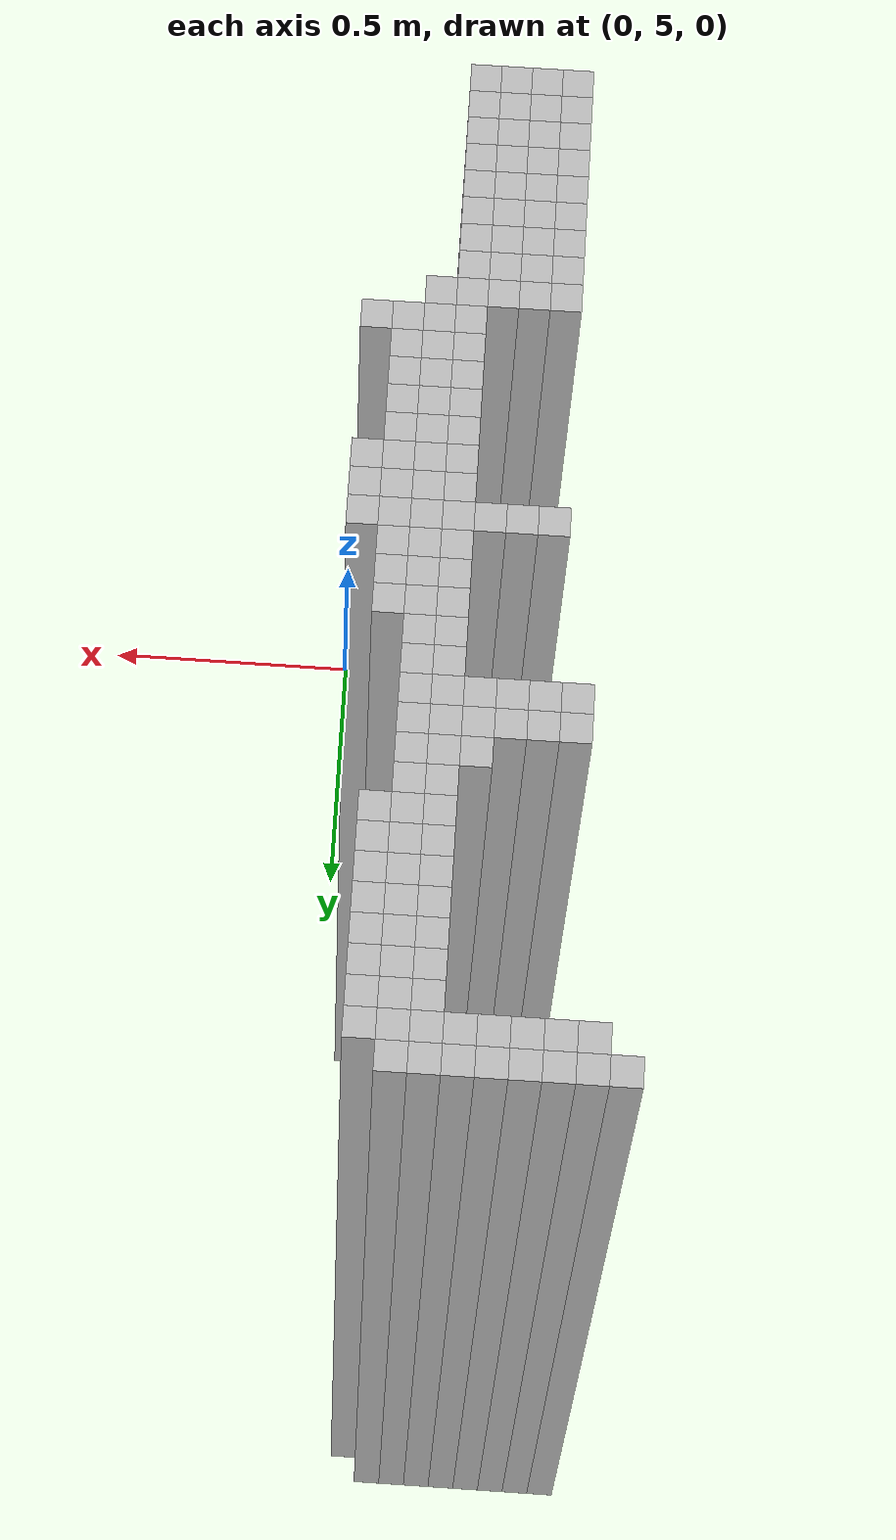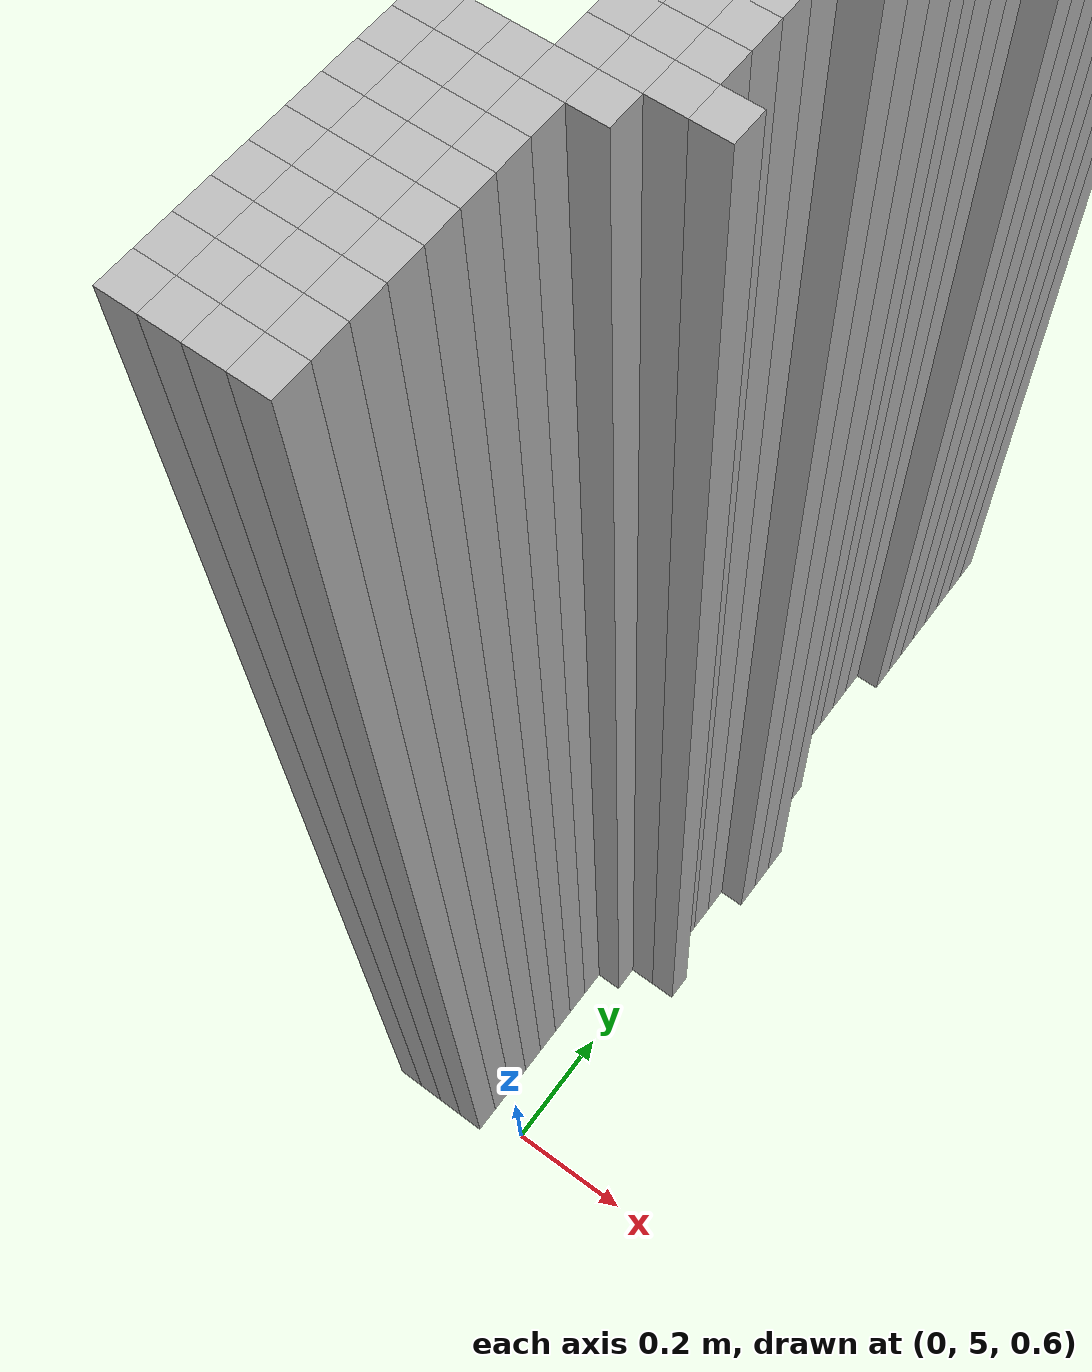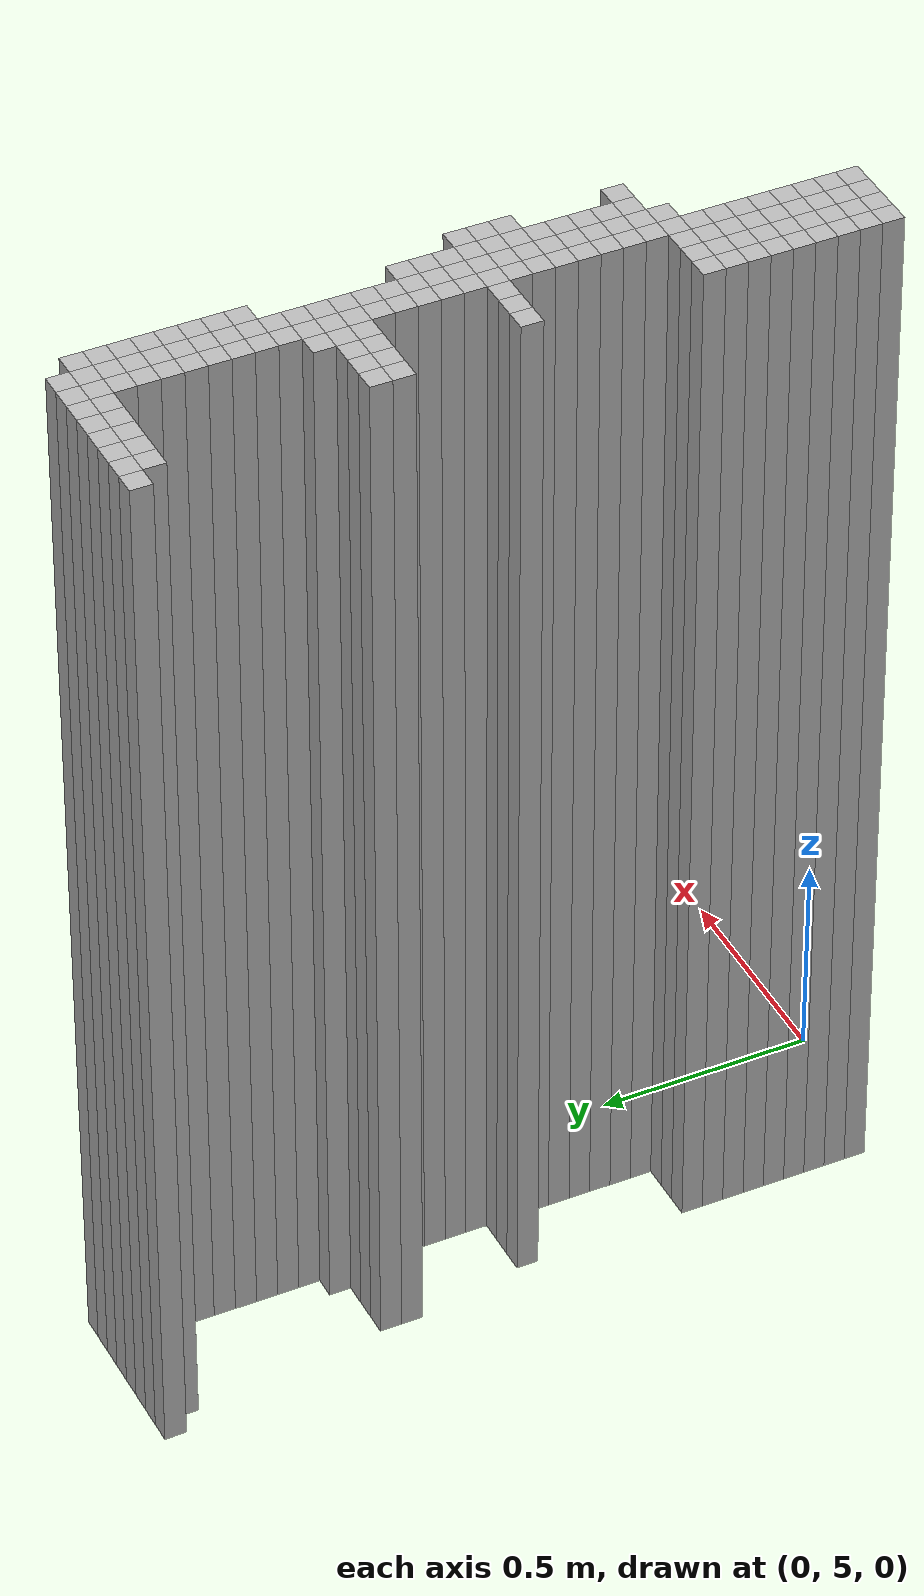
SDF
<sdf version="1.9">
 <world name="map_world">
  <model name="wall_213_18">
   <static>true</static>
   <pose>-0.511 6.780 1.250 0 0 0</pose>
   <link name="link">
    <collision name="collision"><geometry><box><size>0.050 0.050 2.500</size></box></geometry></collision>
    <visual name="visual"><geometry><box><size>0.050 0.050 2.500</size></box></geometry></visual>
   </link>
  </model>
  <model name="wall_214_18">
   <static>true</static>
   <pose>-0.461 6.780 1.250 0 0 0</pose>
   <link name="link">
    <collision name="collision"><geometry><box><size>0.050 0.050 2.500</size></box></geometry></collision>
    <visual name="visual"><geometry><box><size>0.050 0.050 2.500</size></box></geometry></visual>
   </link>
  </model>
  <model name="wall_215_18">
   <static>true</static>
   <pose>-0.411 6.780 1.250 0 0 0</pose>
   <link name="link">
    <collision name="collision"><geometry><box><size>0.050 0.050 2.500</size></box></geometry></collision>
    <visual name="visual"><geometry><box><size>0.050 0.050 2.500</size></box></geometry></visual>
   </link>
  </model>
  <model name="wall_216_18">
   <static>true</static>
   <pose>-0.361 6.780 1.250 0 0 0</pose>
   <link name="link">
    <collision name="collision"><geometry><box><size>0.050 0.050 2.500</size></box></geometry></collision>
    <visual name="visual"><geometry><box><size>0.050 0.050 2.500</size></box></geometry></visual>
   </link>
  </model>
  <model name="wall_217_18">
   <static>true</static>
   <pose>-0.311 6.780 1.250 0 0 0</pose>
   <link name="link">
    <collision name="collision"><geometry><box><size>0.050 0.050 2.500</size></box></geometry></collision>
    <visual name="visual"><geometry><box><size>0.050 0.050 2.500</size></box></geometry></visual>
   </link>
  </model>
  <model name="wall_218_18">
   <static>true</static>
   <pose>-0.261 6.780 1.250 0 0 0</pose>
   <link name="link">
    <collision name="collision"><geometry><box><size>0.050 0.050 2.500</size></box></geometry></collision>
    <visual name="visual"><geometry><box><size>0.050 0.050 2.500</size></box></geometry></visual>
   </link>
  </model>
  <model name="wall_219_18">
   <static>true</static>
   <pose>-0.211 6.780 1.250 0 0 0</pose>
   <link name="link">
    <collision name="collision"><geometry><box><size>0.050 0.050 2.500</size></box></geometry></collision>
    <visual name="visual"><geometry><box><size>0.050 0.050 2.500</size></box></geometry></visual>
   </link>
  </model>
  <model name="wall_220_18">
   <static>true</static>
   <pose>-0.161 6.780 1.250 0 0 0</pose>
   <link name="link">
    <collision name="collision"><geometry><box><size>0.050 0.050 2.500</size></box></geometry></collision>
    <visual name="visual"><geometry><box><size>0.050 0.050 2.500</size></box></geometry></visual>
   </link>
  </model>
  <model name="wall_214_19">
   <static>true</static>
   <pose>-0.461 6.730 1.250 0 0 0</pose>
   <link name="link">
    <collision name="collision"><geometry><box><size>0.050 0.050 2.500</size></box></geometry></collision>
    <visual name="visual"><geometry><box><size>0.050 0.050 2.500</size></box></geometry></visual>
   </link>
  </model>
  <model name="wall_215_19">
   <static>true</static>
   <pose>-0.411 6.730 1.250 0 0 0</pose>
   <link name="link">
    <collision name="collision"><geometry><box><size>0.050 0.050 2.500</size></box></geometry></collision>
    <visual name="visual"><geometry><box><size>0.050 0.050 2.500</size></box></geometry></visual>
   </link>
  </model>
  <model name="wall_216_19">
   <static>true</static>
   <pose>-0.361 6.730 1.250 0 0 0</pose>
   <link name="link">
    <collision name="collision"><geometry><box><size>0.050 0.050 2.500</size></box></geometry></collision>
    <visual name="visual"><geometry><box><size>0.050 0.050 2.500</size></box></geometry></visual>
   </link>
  </model>
  <model name="wall_217_19">
   <static>true</static>
   <pose>-0.311 6.730 1.250 0 0 0</pose>
   <link name="link">
    <collision name="collision"><geometry><box><size>0.050 0.050 2.500</size></box></geometry></collision>
    <visual name="visual"><geometry><box><size>0.050 0.050 2.500</size></box></geometry></visual>
   </link>
  </model>
  <model name="wall_218_19">
   <static>true</static>
   <pose>-0.261 6.730 1.250 0 0 0</pose>
   <link name="link">
    <collision name="collision"><geometry><box><size>0.050 0.050 2.500</size></box></geometry></collision>
    <visual name="visual"><geometry><box><size>0.050 0.050 2.500</size></box></geometry></visual>
   </link>
  </model>
  <model name="wall_219_19">
   <static>true</static>
   <pose>-0.211 6.730 1.250 0 0 0</pose>
   <link name="link">
    <collision name="collision"><geometry><box><size>0.050 0.050 2.500</size></box></geometry></collision>
    <visual name="visual"><geometry><box><size>0.050 0.050 2.500</size></box></geometry></visual>
   </link>
  </model>
  <model name="wall_220_19">
   <static>true</static>
   <pose>-0.161 6.730 1.250 0 0 0</pose>
   <link name="link">
    <collision name="collision"><geometry><box><size>0.050 0.050 2.500</size></box></geometry></collision>
    <visual name="visual"><geometry><box><size>0.050 0.050 2.500</size></box></geometry></visual>
   </link>
  </model>
  <model name="wall_221_19">
   <static>true</static>
   <pose>-0.111 6.730 1.250 0 0 0</pose>
   <link name="link">
    <collision name="collision"><geometry><box><size>0.050 0.050 2.500</size></box></geometry></collision>
    <visual name="visual"><geometry><box><size>0.050 0.050 2.500</size></box></geometry></visual>
   </link>
  </model>
  <model name="wall_219_20">
   <static>true</static>
   <pose>-0.211 6.680 1.250 0 0 0</pose>
   <link name="link">
    <collision name="collision"><geometry><box><size>0.050 0.050 2.500</size></box></geometry></collision>
    <visual name="visual"><geometry><box><size>0.050 0.050 2.500</size></box></geometry></visual>
   </link>
  </model>
  <model name="wall_220_20">
   <static>true</static>
   <pose>-0.161 6.680 1.250 0 0 0</pose>
   <link name="link">
    <collision name="collision"><geometry><box><size>0.050 0.050 2.500</size></box></geometry></collision>
    <visual name="visual"><geometry><box><size>0.050 0.050 2.500</size></box></geometry></visual>
   </link>
  </model>
  <model name="wall_221_20">
   <static>true</static>
   <pose>-0.111 6.680 1.250 0 0 0</pose>
   <link name="link">
    <collision name="collision"><geometry><box><size>0.050 0.050 2.500</size></box></geometry></collision>
    <visual name="visual"><geometry><box><size>0.050 0.050 2.500</size></box></geometry></visual>
   </link>
  </model>
  <model name="wall_219_21">
   <static>true</static>
   <pose>-0.211 6.630 1.250 0 0 0</pose>
   <link name="link">
    <collision name="collision"><geometry><box><size>0.050 0.050 2.500</size></box></geometry></collision>
    <visual name="visual"><geometry><box><size>0.050 0.050 2.500</size></box></geometry></visual>
   </link>
  </model>
  <model name="wall_220_21">
   <static>true</static>
   <pose>-0.161 6.630 1.250 0 0 0</pose>
   <link name="link">
    <collision name="collision"><geometry><box><size>0.050 0.050 2.500</size></box></geometry></collision>
    <visual name="visual"><geometry><box><size>0.050 0.050 2.500</size></box></geometry></visual>
   </link>
  </model>
  <model name="wall_221_21">
   <static>true</static>
   <pose>-0.111 6.630 1.250 0 0 0</pose>
   <link name="link">
    <collision name="collision"><geometry><box><size>0.050 0.050 2.500</size></box></geometry></collision>
    <visual name="visual"><geometry><box><size>0.050 0.050 2.500</size></box></geometry></visual>
   </link>
  </model>
  <model name="wall_219_22">
   <static>true</static>
   <pose>-0.211 6.580 1.250 0 0 0</pose>
   <link name="link">
    <collision name="collision"><geometry><box><size>0.050 0.050 2.500</size></box></geometry></collision>
    <visual name="visual"><geometry><box><size>0.050 0.050 2.500</size></box></geometry></visual>
   </link>
  </model>
  <model name="wall_220_22">
   <static>true</static>
   <pose>-0.161 6.580 1.250 0 0 0</pose>
   <link name="link">
    <collision name="collision"><geometry><box><size>0.050 0.050 2.500</size></box></geometry></collision>
    <visual name="visual"><geometry><box><size>0.050 0.050 2.500</size></box></geometry></visual>
   </link>
  </model>
  <model name="wall_221_22">
   <static>true</static>
   <pose>-0.111 6.580 1.250 0 0 0</pose>
   <link name="link">
    <collision name="collision"><geometry><box><size>0.050 0.050 2.500</size></box></geometry></collision>
    <visual name="visual"><geometry><box><size>0.050 0.050 2.500</size></box></geometry></visual>
   </link>
  </model>
  <model name="wall_219_23">
   <static>true</static>
   <pose>-0.211 6.530 1.250 0 0 0</pose>
   <link name="link">
    <collision name="collision"><geometry><box><size>0.050 0.050 2.500</size></box></geometry></collision>
    <visual name="visual"><geometry><box><size>0.050 0.050 2.500</size></box></geometry></visual>
   </link>
  </model>
  <model name="wall_220_23">
   <static>true</static>
   <pose>-0.161 6.530 1.250 0 0 0</pose>
   <link name="link">
    <collision name="collision"><geometry><box><size>0.050 0.050 2.500</size></box></geometry></collision>
    <visual name="visual"><geometry><box><size>0.050 0.050 2.500</size></box></geometry></visual>
   </link>
  </model>
  <model name="wall_221_23">
   <static>true</static>
   <pose>-0.111 6.530 1.250 0 0 0</pose>
   <link name="link">
    <collision name="collision"><geometry><box><size>0.050 0.050 2.500</size></box></geometry></collision>
    <visual name="visual"><geometry><box><size>0.050 0.050 2.500</size></box></geometry></visual>
   </link>
  </model>
  <model name="wall_219_24">
   <static>true</static>
   <pose>-0.211 6.480 1.250 0 0 0</pose>
   <link name="link">
    <collision name="collision"><geometry><box><size>0.050 0.050 2.500</size></box></geometry></collision>
    <visual name="visual"><geometry><box><size>0.050 0.050 2.500</size></box></geometry></visual>
   </link>
  </model>
  <model name="wall_220_24">
   <static>true</static>
   <pose>-0.161 6.480 1.250 0 0 0</pose>
   <link name="link">
    <collision name="collision"><geometry><box><size>0.050 0.050 2.500</size></box></geometry></collision>
    <visual name="visual"><geometry><box><size>0.050 0.050 2.500</size></box></geometry></visual>
   </link>
  </model>
  <model name="wall_221_24">
   <static>true</static>
   <pose>-0.111 6.480 1.250 0 0 0</pose>
   <link name="link">
    <collision name="collision"><geometry><box><size>0.050 0.050 2.500</size></box></geometry></collision>
    <visual name="visual"><geometry><box><size>0.050 0.050 2.500</size></box></geometry></visual>
   </link>
  </model>
  <model name="wall_219_25">
   <static>true</static>
   <pose>-0.211 6.430 1.250 0 0 0</pose>
   <link name="link">
    <collision name="collision"><geometry><box><size>0.050 0.050 2.500</size></box></geometry></collision>
    <visual name="visual"><geometry><box><size>0.050 0.050 2.500</size></box></geometry></visual>
   </link>
  </model>
  <model name="wall_220_25">
   <static>true</static>
   <pose>-0.161 6.430 1.250 0 0 0</pose>
   <link name="link">
    <collision name="collision"><geometry><box><size>0.050 0.050 2.500</size></box></geometry></collision>
    <visual name="visual"><geometry><box><size>0.050 0.050 2.500</size></box></geometry></visual>
   </link>
  </model>
  <model name="wall_221_25">
   <static>true</static>
   <pose>-0.111 6.430 1.250 0 0 0</pose>
   <link name="link">
    <collision name="collision"><geometry><box><size>0.050 0.050 2.500</size></box></geometry></collision>
    <visual name="visual"><geometry><box><size>0.050 0.050 2.500</size></box></geometry></visual>
   </link>
  </model>
  <model name="wall_219_26">
   <static>true</static>
   <pose>-0.211 6.380 1.250 0 0 0</pose>
   <link name="link">
    <collision name="collision"><geometry><box><size>0.050 0.050 2.500</size></box></geometry></collision>
    <visual name="visual"><geometry><box><size>0.050 0.050 2.500</size></box></geometry></visual>
   </link>
  </model>
  <model name="wall_220_26">
   <static>true</static>
   <pose>-0.161 6.380 1.250 0 0 0</pose>
   <link name="link">
    <collision name="collision"><geometry><box><size>0.050 0.050 2.500</size></box></geometry></collision>
    <visual name="visual"><geometry><box><size>0.050 0.050 2.500</size></box></geometry></visual>
   </link>
  </model>
  <model name="wall_221_26">
   <static>true</static>
   <pose>-0.111 6.380 1.250 0 0 0</pose>
   <link name="link">
    <collision name="collision"><geometry><box><size>0.050 0.050 2.500</size></box></geometry></collision>
    <visual name="visual"><geometry><box><size>0.050 0.050 2.500</size></box></geometry></visual>
   </link>
  </model>
  <model name="wall_219_27">
   <static>true</static>
   <pose>-0.211 6.330 1.250 0 0 0</pose>
   <link name="link">
    <collision name="collision"><geometry><box><size>0.050 0.050 2.500</size></box></geometry></collision>
    <visual name="visual"><geometry><box><size>0.050 0.050 2.500</size></box></geometry></visual>
   </link>
  </model>
  <model name="wall_220_27">
   <static>true</static>
   <pose>-0.161 6.330 1.250 0 0 0</pose>
   <link name="link">
    <collision name="collision"><geometry><box><size>0.050 0.050 2.500</size></box></geometry></collision>
    <visual name="visual"><geometry><box><size>0.050 0.050 2.500</size></box></geometry></visual>
   </link>
  </model>
  <model name="wall_218_28">
   <static>true</static>
   <pose>-0.261 6.280 1.250 0 0 0</pose>
   <link name="link">
    <collision name="collision"><geometry><box><size>0.050 0.050 2.500</size></box></geometry></collision>
    <visual name="visual"><geometry><box><size>0.050 0.050 2.500</size></box></geometry></visual>
   </link>
  </model>
  <model name="wall_219_28">
   <static>true</static>
   <pose>-0.211 6.280 1.250 0 0 0</pose>
   <link name="link">
    <collision name="collision"><geometry><box><size>0.050 0.050 2.500</size></box></geometry></collision>
    <visual name="visual"><geometry><box><size>0.050 0.050 2.500</size></box></geometry></visual>
   </link>
  </model>
  <model name="wall_220_28">
   <static>true</static>
   <pose>-0.161 6.280 1.250 0 0 0</pose>
   <link name="link">
    <collision name="collision"><geometry><box><size>0.050 0.050 2.500</size></box></geometry></collision>
    <visual name="visual"><geometry><box><size>0.050 0.050 2.500</size></box></geometry></visual>
   </link>
  </model>
  <model name="wall_215_29">
   <static>true</static>
   <pose>-0.411 6.230 1.250 0 0 0</pose>
   <link name="link">
    <collision name="collision"><geometry><box><size>0.050 0.050 2.500</size></box></geometry></collision>
    <visual name="visual"><geometry><box><size>0.050 0.050 2.500</size></box></geometry></visual>
   </link>
  </model>
  <model name="wall_216_29">
   <static>true</static>
   <pose>-0.361 6.230 1.250 0 0 0</pose>
   <link name="link">
    <collision name="collision"><geometry><box><size>0.050 0.050 2.500</size></box></geometry></collision>
    <visual name="visual"><geometry><box><size>0.050 0.050 2.500</size></box></geometry></visual>
   </link>
  </model>
  <model name="wall_217_29">
   <static>true</static>
   <pose>-0.311 6.230 1.250 0 0 0</pose>
   <link name="link">
    <collision name="collision"><geometry><box><size>0.050 0.050 2.500</size></box></geometry></collision>
    <visual name="visual"><geometry><box><size>0.050 0.050 2.500</size></box></geometry></visual>
   </link>
  </model>
  <model name="wall_218_29">
   <static>true</static>
   <pose>-0.261 6.230 1.250 0 0 0</pose>
   <link name="link">
    <collision name="collision"><geometry><box><size>0.050 0.050 2.500</size></box></geometry></collision>
    <visual name="visual"><geometry><box><size>0.050 0.050 2.500</size></box></geometry></visual>
   </link>
  </model>
  <model name="wall_219_29">
   <static>true</static>
   <pose>-0.211 6.230 1.250 0 0 0</pose>
   <link name="link">
    <collision name="collision"><geometry><box><size>0.050 0.050 2.500</size></box></geometry></collision>
    <visual name="visual"><geometry><box><size>0.050 0.050 2.500</size></box></geometry></visual>
   </link>
  </model>
  <model name="wall_220_29">
   <static>true</static>
   <pose>-0.161 6.230 1.250 0 0 0</pose>
   <link name="link">
    <collision name="collision"><geometry><box><size>0.050 0.050 2.500</size></box></geometry></collision>
    <visual name="visual"><geometry><box><size>0.050 0.050 2.500</size></box></geometry></visual>
   </link>
  </model>
  <model name="wall_215_30">
   <static>true</static>
   <pose>-0.411 6.180 1.250 0 0 0</pose>
   <link name="link">
    <collision name="collision"><geometry><box><size>0.050 0.050 2.500</size></box></geometry></collision>
    <visual name="visual"><geometry><box><size>0.050 0.050 2.500</size></box></geometry></visual>
   </link>
  </model>
  <model name="wall_216_30">
   <static>true</static>
   <pose>-0.361 6.180 1.250 0 0 0</pose>
   <link name="link">
    <collision name="collision"><geometry><box><size>0.050 0.050 2.500</size></box></geometry></collision>
    <visual name="visual"><geometry><box><size>0.050 0.050 2.500</size></box></geometry></visual>
   </link>
  </model>
  <model name="wall_217_30">
   <static>true</static>
   <pose>-0.311 6.180 1.250 0 0 0</pose>
   <link name="link">
    <collision name="collision"><geometry><box><size>0.050 0.050 2.500</size></box></geometry></collision>
    <visual name="visual"><geometry><box><size>0.050 0.050 2.500</size></box></geometry></visual>
   </link>
  </model>
  <model name="wall_218_30">
   <static>true</static>
   <pose>-0.261 6.180 1.250 0 0 0</pose>
   <link name="link">
    <collision name="collision"><geometry><box><size>0.050 0.050 2.500</size></box></geometry></collision>
    <visual name="visual"><geometry><box><size>0.050 0.050 2.500</size></box></geometry></visual>
   </link>
  </model>
  <model name="wall_219_30">
   <static>true</static>
   <pose>-0.211 6.180 1.250 0 0 0</pose>
   <link name="link">
    <collision name="collision"><geometry><box><size>0.050 0.050 2.500</size></box></geometry></collision>
    <visual name="visual"><geometry><box><size>0.050 0.050 2.500</size></box></geometry></visual>
   </link>
  </model>
  <model name="wall_220_30">
   <static>true</static>
   <pose>-0.161 6.180 1.250 0 0 0</pose>
   <link name="link">
    <collision name="collision"><geometry><box><size>0.050 0.050 2.500</size></box></geometry></collision>
    <visual name="visual"><geometry><box><size>0.050 0.050 2.500</size></box></geometry></visual>
   </link>
  </model>
  <model name="wall_219_31">
   <static>true</static>
   <pose>-0.211 6.130 1.250 0 0 0</pose>
   <link name="link">
    <collision name="collision"><geometry><box><size>0.050 0.050 2.500</size></box></geometry></collision>
    <visual name="visual"><geometry><box><size>0.050 0.050 2.500</size></box></geometry></visual>
   </link>
  </model>
  <model name="wall_220_31">
   <static>true</static>
   <pose>-0.161 6.130 1.250 0 0 0</pose>
   <link name="link">
    <collision name="collision"><geometry><box><size>0.050 0.050 2.500</size></box></geometry></collision>
    <visual name="visual"><geometry><box><size>0.050 0.050 2.500</size></box></geometry></visual>
   </link>
  </model>
  <model name="wall_219_32">
   <static>true</static>
   <pose>-0.211 6.080 1.250 0 0 0</pose>
   <link name="link">
    <collision name="collision"><geometry><box><size>0.050 0.050 2.500</size></box></geometry></collision>
    <visual name="visual"><geometry><box><size>0.050 0.050 2.500</size></box></geometry></visual>
   </link>
  </model>
  <model name="wall_220_32">
   <static>true</static>
   <pose>-0.161 6.080 1.250 0 0 0</pose>
   <link name="link">
    <collision name="collision"><geometry><box><size>0.050 0.050 2.500</size></box></geometry></collision>
    <visual name="visual"><geometry><box><size>0.050 0.050 2.500</size></box></geometry></visual>
   </link>
  </model>
  <model name="wall_219_33">
   <static>true</static>
   <pose>-0.211 6.030 1.250 0 0 0</pose>
   <link name="link">
    <collision name="collision"><geometry><box><size>0.050 0.050 2.500</size></box></geometry></collision>
    <visual name="visual"><geometry><box><size>0.050 0.050 2.500</size></box></geometry></visual>
   </link>
  </model>
  <model name="wall_220_33">
   <static>true</static>
   <pose>-0.161 6.030 1.250 0 0 0</pose>
   <link name="link">
    <collision name="collision"><geometry><box><size>0.050 0.050 2.500</size></box></geometry></collision>
    <visual name="visual"><geometry><box><size>0.050 0.050 2.500</size></box></geometry></visual>
   </link>
  </model>
  <model name="wall_221_33">
   <static>true</static>
   <pose>-0.111 6.030 1.250 0 0 0</pose>
   <link name="link">
    <collision name="collision"><geometry><box><size>0.050 0.050 2.500</size></box></geometry></collision>
    <visual name="visual"><geometry><box><size>0.050 0.050 2.500</size></box></geometry></visual>
   </link>
  </model>
  <model name="wall_219_34">
   <static>true</static>
   <pose>-0.211 5.980 1.250 0 0 0</pose>
   <link name="link">
    <collision name="collision"><geometry><box><size>0.050 0.050 2.500</size></box></geometry></collision>
    <visual name="visual"><geometry><box><size>0.050 0.050 2.500</size></box></geometry></visual>
   </link>
  </model>
  <model name="wall_220_34">
   <static>true</static>
   <pose>-0.161 5.980 1.250 0 0 0</pose>
   <link name="link">
    <collision name="collision"><geometry><box><size>0.050 0.050 2.500</size></box></geometry></collision>
    <visual name="visual"><geometry><box><size>0.050 0.050 2.500</size></box></geometry></visual>
   </link>
  </model>
  <model name="wall_221_34">
   <static>true</static>
   <pose>-0.111 5.980 1.250 0 0 0</pose>
   <link name="link">
    <collision name="collision"><geometry><box><size>0.050 0.050 2.500</size></box></geometry></collision>
    <visual name="visual"><geometry><box><size>0.050 0.050 2.500</size></box></geometry></visual>
   </link>
  </model>
  <model name="wall_219_35">
   <static>true</static>
   <pose>-0.211 5.930 1.250 0 0 0</pose>
   <link name="link">
    <collision name="collision"><geometry><box><size>0.050 0.050 2.500</size></box></geometry></collision>
    <visual name="visual"><geometry><box><size>0.050 0.050 2.500</size></box></geometry></visual>
   </link>
  </model>
  <model name="wall_220_35">
   <static>true</static>
   <pose>-0.161 5.930 1.250 0 0 0</pose>
   <link name="link">
    <collision name="collision"><geometry><box><size>0.050 0.050 2.500</size></box></geometry></collision>
    <visual name="visual"><geometry><box><size>0.050 0.050 2.500</size></box></geometry></visual>
   </link>
  </model>
  <model name="wall_221_35">
   <static>true</static>
   <pose>-0.111 5.930 1.250 0 0 0</pose>
   <link name="link">
    <collision name="collision"><geometry><box><size>0.050 0.050 2.500</size></box></geometry></collision>
    <visual name="visual"><geometry><box><size>0.050 0.050 2.500</size></box></geometry></visual>
   </link>
  </model>
  <model name="wall_216_36">
   <static>true</static>
   <pose>-0.361 5.880 1.250 0 0 0</pose>
   <link name="link">
    <collision name="collision"><geometry><box><size>0.050 0.050 2.500</size></box></geometry></collision>
    <visual name="visual"><geometry><box><size>0.050 0.050 2.500</size></box></geometry></visual>
   </link>
  </model>
  <model name="wall_217_36">
   <static>true</static>
   <pose>-0.311 5.880 1.250 0 0 0</pose>
   <link name="link">
    <collision name="collision"><geometry><box><size>0.050 0.050 2.500</size></box></geometry></collision>
    <visual name="visual"><geometry><box><size>0.050 0.050 2.500</size></box></geometry></visual>
   </link>
  </model>
  <model name="wall_218_36">
   <static>true</static>
   <pose>-0.261 5.880 1.250 0 0 0</pose>
   <link name="link">
    <collision name="collision"><geometry><box><size>0.050 0.050 2.500</size></box></geometry></collision>
    <visual name="visual"><geometry><box><size>0.050 0.050 2.500</size></box></geometry></visual>
   </link>
  </model>
  <model name="wall_219_36">
   <static>true</static>
   <pose>-0.211 5.880 1.250 0 0 0</pose>
   <link name="link">
    <collision name="collision"><geometry><box><size>0.050 0.050 2.500</size></box></geometry></collision>
    <visual name="visual"><geometry><box><size>0.050 0.050 2.500</size></box></geometry></visual>
   </link>
  </model>
  <model name="wall_220_36">
   <static>true</static>
   <pose>-0.161 5.880 1.250 0 0 0</pose>
   <link name="link">
    <collision name="collision"><geometry><box><size>0.050 0.050 2.500</size></box></geometry></collision>
    <visual name="visual"><geometry><box><size>0.050 0.050 2.500</size></box></geometry></visual>
   </link>
  </model>
  <model name="wall_221_36">
   <static>true</static>
   <pose>-0.111 5.880 1.250 0 0 0</pose>
   <link name="link">
    <collision name="collision"><geometry><box><size>0.050 0.050 2.500</size></box></geometry></collision>
    <visual name="visual"><geometry><box><size>0.050 0.050 2.500</size></box></geometry></visual>
   </link>
  </model>
  <model name="wall_222_36">
   <static>true</static>
   <pose>-0.061 5.880 1.250 0 0 0</pose>
   <link name="link">
    <collision name="collision"><geometry><box><size>0.050 0.050 2.500</size></box></geometry></collision>
    <visual name="visual"><geometry><box><size>0.050 0.050 2.500</size></box></geometry></visual>
   </link>
  </model>
  <model name="wall_219_37">
   <static>true</static>
   <pose>-0.211 5.830 1.250 0 0 0</pose>
   <link name="link">
    <collision name="collision"><geometry><box><size>0.050 0.050 2.500</size></box></geometry></collision>
    <visual name="visual"><geometry><box><size>0.050 0.050 2.500</size></box></geometry></visual>
   </link>
  </model>
  <model name="wall_220_37">
   <static>true</static>
   <pose>-0.161 5.830 1.250 0 0 0</pose>
   <link name="link">
    <collision name="collision"><geometry><box><size>0.050 0.050 2.500</size></box></geometry></collision>
    <visual name="visual"><geometry><box><size>0.050 0.050 2.500</size></box></geometry></visual>
   </link>
  </model>
  <model name="wall_221_37">
   <static>true</static>
   <pose>-0.111 5.830 1.250 0 0 0</pose>
   <link name="link">
    <collision name="collision"><geometry><box><size>0.050 0.050 2.500</size></box></geometry></collision>
    <visual name="visual"><geometry><box><size>0.050 0.050 2.500</size></box></geometry></visual>
   </link>
  </model>
  <model name="wall_222_37">
   <static>true</static>
   <pose>-0.061 5.830 1.250 0 0 0</pose>
   <link name="link">
    <collision name="collision"><geometry><box><size>0.050 0.050 2.500</size></box></geometry></collision>
    <visual name="visual"><geometry><box><size>0.050 0.050 2.500</size></box></geometry></visual>
   </link>
  </model>
  <model name="wall_219_38">
   <static>true</static>
   <pose>-0.211 5.780 1.250 0 0 0</pose>
   <link name="link">
    <collision name="collision"><geometry><box><size>0.050 0.050 2.500</size></box></geometry></collision>
    <visual name="visual"><geometry><box><size>0.050 0.050 2.500</size></box></geometry></visual>
   </link>
  </model>
  <model name="wall_220_38">
   <static>true</static>
   <pose>-0.161 5.780 1.250 0 0 0</pose>
   <link name="link">
    <collision name="collision"><geometry><box><size>0.050 0.050 2.500</size></box></geometry></collision>
    <visual name="visual"><geometry><box><size>0.050 0.050 2.500</size></box></geometry></visual>
   </link>
  </model>
  <model name="wall_221_38">
   <static>true</static>
   <pose>-0.111 5.780 1.250 0 0 0</pose>
   <link name="link">
    <collision name="collision"><geometry><box><size>0.050 0.050 2.500</size></box></geometry></collision>
    <visual name="visual"><geometry><box><size>0.050 0.050 2.500</size></box></geometry></visual>
   </link>
  </model>
  <model name="wall_222_38">
   <static>true</static>
   <pose>-0.061 5.780 1.250 0 0 0</pose>
   <link name="link">
    <collision name="collision"><geometry><box><size>0.050 0.050 2.500</size></box></geometry></collision>
    <visual name="visual"><geometry><box><size>0.050 0.050 2.500</size></box></geometry></visual>
   </link>
  </model>
  <model name="wall_219_39">
   <static>true</static>
   <pose>-0.211 5.730 1.250 0 0 0</pose>
   <link name="link">
    <collision name="collision"><geometry><box><size>0.050 0.050 2.500</size></box></geometry></collision>
    <visual name="visual"><geometry><box><size>0.050 0.050 2.500</size></box></geometry></visual>
   </link>
  </model>
  <model name="wall_220_39">
   <static>true</static>
   <pose>-0.161 5.730 1.250 0 0 0</pose>
   <link name="link">
    <collision name="collision"><geometry><box><size>0.050 0.050 2.500</size></box></geometry></collision>
    <visual name="visual"><geometry><box><size>0.050 0.050 2.500</size></box></geometry></visual>
   </link>
  </model>
  <model name="wall_221_39">
   <static>true</static>
   <pose>-0.111 5.730 1.250 0 0 0</pose>
   <link name="link">
    <collision name="collision"><geometry><box><size>0.050 0.050 2.500</size></box></geometry></collision>
    <visual name="visual"><geometry><box><size>0.050 0.050 2.500</size></box></geometry></visual>
   </link>
  </model>
  <model name="wall_219_40">
   <static>true</static>
   <pose>-0.211 5.680 1.250 0 0 0</pose>
   <link name="link">
    <collision name="collision"><geometry><box><size>0.050 0.050 2.500</size></box></geometry></collision>
    <visual name="visual"><geometry><box><size>0.050 0.050 2.500</size></box></geometry></visual>
   </link>
  </model>
  <model name="wall_220_40">
   <static>true</static>
   <pose>-0.161 5.680 1.250 0 0 0</pose>
   <link name="link">
    <collision name="collision"><geometry><box><size>0.050 0.050 2.500</size></box></geometry></collision>
    <visual name="visual"><geometry><box><size>0.050 0.050 2.500</size></box></geometry></visual>
   </link>
  </model>
  <model name="wall_221_40">
   <static>true</static>
   <pose>-0.111 5.680 1.250 0 0 0</pose>
   <link name="link">
    <collision name="collision"><geometry><box><size>0.050 0.050 2.500</size></box></geometry></collision>
    <visual name="visual"><geometry><box><size>0.050 0.050 2.500</size></box></geometry></visual>
   </link>
  </model>
  <model name="wall_219_41">
   <static>true</static>
   <pose>-0.211 5.630 1.250 0 0 0</pose>
   <link name="link">
    <collision name="collision"><geometry><box><size>0.050 0.050 2.500</size></box></geometry></collision>
    <visual name="visual"><geometry><box><size>0.050 0.050 2.500</size></box></geometry></visual>
   </link>
  </model>
  <model name="wall_220_41">
   <static>true</static>
   <pose>-0.161 5.630 1.250 0 0 0</pose>
   <link name="link">
    <collision name="collision"><geometry><box><size>0.050 0.050 2.500</size></box></geometry></collision>
    <visual name="visual"><geometry><box><size>0.050 0.050 2.500</size></box></geometry></visual>
   </link>
  </model>
  <model name="wall_221_41">
   <static>true</static>
   <pose>-0.111 5.630 1.250 0 0 0</pose>
   <link name="link">
    <collision name="collision"><geometry><box><size>0.050 0.050 2.500</size></box></geometry></collision>
    <visual name="visual"><geometry><box><size>0.050 0.050 2.500</size></box></geometry></visual>
   </link>
  </model>
  <model name="wall_219_42">
   <static>true</static>
   <pose>-0.211 5.580 1.250 0 0 0</pose>
   <link name="link">
    <collision name="collision"><geometry><box><size>0.050 0.050 2.500</size></box></geometry></collision>
    <visual name="visual"><geometry><box><size>0.050 0.050 2.500</size></box></geometry></visual>
   </link>
  </model>
  <model name="wall_220_42">
   <static>true</static>
   <pose>-0.161 5.580 1.250 0 0 0</pose>
   <link name="link">
    <collision name="collision"><geometry><box><size>0.050 0.050 2.500</size></box></geometry></collision>
    <visual name="visual"><geometry><box><size>0.050 0.050 2.500</size></box></geometry></visual>
   </link>
  </model>
  <model name="wall_221_42">
   <static>true</static>
   <pose>-0.111 5.580 1.250 0 0 0</pose>
   <link name="link">
    <collision name="collision"><geometry><box><size>0.050 0.050 2.500</size></box></geometry></collision>
    <visual name="visual"><geometry><box><size>0.050 0.050 2.500</size></box></geometry></visual>
   </link>
  </model>
  <model name="wall_219_43">
   <static>true</static>
   <pose>-0.211 5.530 1.250 0 0 0</pose>
   <link name="link">
    <collision name="collision"><geometry><box><size>0.050 0.050 2.500</size></box></geometry></collision>
    <visual name="visual"><geometry><box><size>0.050 0.050 2.500</size></box></geometry></visual>
   </link>
  </model>
  <model name="wall_220_43">
   <static>true</static>
   <pose>-0.161 5.530 1.250 0 0 0</pose>
   <link name="link">
    <collision name="collision"><geometry><box><size>0.050 0.050 2.500</size></box></geometry></collision>
    <visual name="visual"><geometry><box><size>0.050 0.050 2.500</size></box></geometry></visual>
   </link>
  </model>
  <model name="wall_221_43">
   <static>true</static>
   <pose>-0.111 5.530 1.250 0 0 0</pose>
   <link name="link">
    <collision name="collision"><geometry><box><size>0.050 0.050 2.500</size></box></geometry></collision>
    <visual name="visual"><geometry><box><size>0.050 0.050 2.500</size></box></geometry></visual>
   </link>
  </model>
  <model name="wall_222_43">
   <static>true</static>
   <pose>-0.061 5.530 1.250 0 0 0</pose>
   <link name="link">
    <collision name="collision"><geometry><box><size>0.050 0.050 2.500</size></box></geometry></collision>
    <visual name="visual"><geometry><box><size>0.050 0.050 2.500</size></box></geometry></visual>
   </link>
  </model>
  <model name="wall_216_44">
   <static>true</static>
   <pose>-0.361 5.480 1.250 0 0 0</pose>
   <link name="link">
    <collision name="collision"><geometry><box><size>0.050 0.050 2.500</size></box></geometry></collision>
    <visual name="visual"><geometry><box><size>0.050 0.050 2.500</size></box></geometry></visual>
   </link>
  </model>
  <model name="wall_217_44">
   <static>true</static>
   <pose>-0.311 5.480 1.250 0 0 0</pose>
   <link name="link">
    <collision name="collision"><geometry><box><size>0.050 0.050 2.500</size></box></geometry></collision>
    <visual name="visual"><geometry><box><size>0.050 0.050 2.500</size></box></geometry></visual>
   </link>
  </model>
  <model name="wall_218_44">
   <static>true</static>
   <pose>-0.261 5.480 1.250 0 0 0</pose>
   <link name="link">
    <collision name="collision"><geometry><box><size>0.050 0.050 2.500</size></box></geometry></collision>
    <visual name="visual"><geometry><box><size>0.050 0.050 2.500</size></box></geometry></visual>
   </link>
  </model>
  <model name="wall_219_44">
   <static>true</static>
   <pose>-0.211 5.480 1.250 0 0 0</pose>
   <link name="link">
    <collision name="collision"><geometry><box><size>0.050 0.050 2.500</size></box></geometry></collision>
    <visual name="visual"><geometry><box><size>0.050 0.050 2.500</size></box></geometry></visual>
   </link>
  </model>
  <model name="wall_220_44">
   <static>true</static>
   <pose>-0.161 5.480 1.250 0 0 0</pose>
   <link name="link">
    <collision name="collision"><geometry><box><size>0.050 0.050 2.500</size></box></geometry></collision>
    <visual name="visual"><geometry><box><size>0.050 0.050 2.500</size></box></geometry></visual>
   </link>
  </model>
  <model name="wall_216_45">
   <static>true</static>
   <pose>-0.361 5.430 1.250 0 0 0</pose>
   <link name="link">
    <collision name="collision"><geometry><box><size>0.050 0.050 2.500</size></box></geometry></collision>
    <visual name="visual"><geometry><box><size>0.050 0.050 2.500</size></box></geometry></visual>
   </link>
  </model>
  <model name="wall_217_45">
   <static>true</static>
   <pose>-0.311 5.430 1.250 0 0 0</pose>
   <link name="link">
    <collision name="collision"><geometry><box><size>0.050 0.050 2.500</size></box></geometry></collision>
    <visual name="visual"><geometry><box><size>0.050 0.050 2.500</size></box></geometry></visual>
   </link>
  </model>
  <model name="wall_218_45">
   <static>true</static>
   <pose>-0.261 5.430 1.250 0 0 0</pose>
   <link name="link">
    <collision name="collision"><geometry><box><size>0.050 0.050 2.500</size></box></geometry></collision>
    <visual name="visual"><geometry><box><size>0.050 0.050 2.500</size></box></geometry></visual>
   </link>
  </model>
  <model name="wall_219_45">
   <static>true</static>
   <pose>-0.211 5.430 1.250 0 0 0</pose>
   <link name="link">
    <collision name="collision"><geometry><box><size>0.050 0.050 2.500</size></box></geometry></collision>
    <visual name="visual"><geometry><box><size>0.050 0.050 2.500</size></box></geometry></visual>
   </link>
  </model>
  <model name="wall_216_46">
   <static>true</static>
   <pose>-0.361 5.380 1.250 0 0 0</pose>
   <link name="link">
    <collision name="collision"><geometry><box><size>0.050 0.050 2.500</size></box></geometry></collision>
    <visual name="visual"><geometry><box><size>0.050 0.050 2.500</size></box></geometry></visual>
   </link>
  </model>
  <model name="wall_217_46">
   <static>true</static>
   <pose>-0.311 5.380 1.250 0 0 0</pose>
   <link name="link">
    <collision name="collision"><geometry><box><size>0.050 0.050 2.500</size></box></geometry></collision>
    <visual name="visual"><geometry><box><size>0.050 0.050 2.500</size></box></geometry></visual>
   </link>
  </model>
  <model name="wall_218_46">
   <static>true</static>
   <pose>-0.261 5.380 1.250 0 0 0</pose>
   <link name="link">
    <collision name="collision"><geometry><box><size>0.050 0.050 2.500</size></box></geometry></collision>
    <visual name="visual"><geometry><box><size>0.050 0.050 2.500</size></box></geometry></visual>
   </link>
  </model>
  <model name="wall_219_46">
   <static>true</static>
   <pose>-0.211 5.380 1.250 0 0 0</pose>
   <link name="link">
    <collision name="collision"><geometry><box><size>0.050 0.050 2.500</size></box></geometry></collision>
    <visual name="visual"><geometry><box><size>0.050 0.050 2.500</size></box></geometry></visual>
   </link>
  </model>
  <model name="wall_216_47">
   <static>true</static>
   <pose>-0.361 5.330 1.250 0 0 0</pose>
   <link name="link">
    <collision name="collision"><geometry><box><size>0.050 0.050 2.500</size></box></geometry></collision>
    <visual name="visual"><geometry><box><size>0.050 0.050 2.500</size></box></geometry></visual>
   </link>
  </model>
  <model name="wall_217_47">
   <static>true</static>
   <pose>-0.311 5.330 1.250 0 0 0</pose>
   <link name="link">
    <collision name="collision"><geometry><box><size>0.050 0.050 2.500</size></box></geometry></collision>
    <visual name="visual"><geometry><box><size>0.050 0.050 2.500</size></box></geometry></visual>
   </link>
  </model>
  <model name="wall_218_47">
   <static>true</static>
   <pose>-0.261 5.330 1.250 0 0 0</pose>
   <link name="link">
    <collision name="collision"><geometry><box><size>0.050 0.050 2.500</size></box></geometry></collision>
    <visual name="visual"><geometry><box><size>0.050 0.050 2.500</size></box></geometry></visual>
   </link>
  </model>
  <model name="wall_219_47">
   <static>true</static>
   <pose>-0.211 5.330 1.250 0 0 0</pose>
   <link name="link">
    <collision name="collision"><geometry><box><size>0.050 0.050 2.500</size></box></geometry></collision>
    <visual name="visual"><geometry><box><size>0.050 0.050 2.500</size></box></geometry></visual>
   </link>
  </model>
  <model name="wall_216_48">
   <static>true</static>
   <pose>-0.361 5.280 1.250 0 0 0</pose>
   <link name="link">
    <collision name="collision"><geometry><box><size>0.050 0.050 2.500</size></box></geometry></collision>
    <visual name="visual"><geometry><box><size>0.050 0.050 2.500</size></box></geometry></visual>
   </link>
  </model>
  <model name="wall_217_48">
   <static>true</static>
   <pose>-0.311 5.280 1.250 0 0 0</pose>
   <link name="link">
    <collision name="collision"><geometry><box><size>0.050 0.050 2.500</size></box></geometry></collision>
    <visual name="visual"><geometry><box><size>0.050 0.050 2.500</size></box></geometry></visual>
   </link>
  </model>
  <model name="wall_218_48">
   <static>true</static>
   <pose>-0.261 5.280 1.250 0 0 0</pose>
   <link name="link">
    <collision name="collision"><geometry><box><size>0.050 0.050 2.500</size></box></geometry></collision>
    <visual name="visual"><geometry><box><size>0.050 0.050 2.500</size></box></geometry></visual>
   </link>
  </model>
  <model name="wall_219_48">
   <static>true</static>
   <pose>-0.211 5.280 1.250 0 0 0</pose>
   <link name="link">
    <collision name="collision"><geometry><box><size>0.050 0.050 2.500</size></box></geometry></collision>
    <visual name="visual"><geometry><box><size>0.050 0.050 2.500</size></box></geometry></visual>
   </link>
  </model>
  <model name="wall_216_49">
   <static>true</static>
   <pose>-0.361 5.230 1.250 0 0 0</pose>
   <link name="link">
    <collision name="collision"><geometry><box><size>0.050 0.050 2.500</size></box></geometry></collision>
    <visual name="visual"><geometry><box><size>0.050 0.050 2.500</size></box></geometry></visual>
   </link>
  </model>
  <model name="wall_217_49">
   <static>true</static>
   <pose>-0.311 5.230 1.250 0 0 0</pose>
   <link name="link">
    <collision name="collision"><geometry><box><size>0.050 0.050 2.500</size></box></geometry></collision>
    <visual name="visual"><geometry><box><size>0.050 0.050 2.500</size></box></geometry></visual>
   </link>
  </model>
  <model name="wall_218_49">
   <static>true</static>
   <pose>-0.261 5.230 1.250 0 0 0</pose>
   <link name="link">
    <collision name="collision"><geometry><box><size>0.050 0.050 2.500</size></box></geometry></collision>
    <visual name="visual"><geometry><box><size>0.050 0.050 2.500</size></box></geometry></visual>
   </link>
  </model>
  <model name="wall_219_49">
   <static>true</static>
   <pose>-0.211 5.230 1.250 0 0 0</pose>
   <link name="link">
    <collision name="collision"><geometry><box><size>0.050 0.050 2.500</size></box></geometry></collision>
    <visual name="visual"><geometry><box><size>0.050 0.050 2.500</size></box></geometry></visual>
   </link>
  </model>
  <model name="wall_216_50">
   <static>true</static>
   <pose>-0.361 5.180 1.250 0 0 0</pose>
   <link name="link">
    <collision name="collision"><geometry><box><size>0.050 0.050 2.500</size></box></geometry></collision>
    <visual name="visual"><geometry><box><size>0.050 0.050 2.500</size></box></geometry></visual>
   </link>
  </model>
  <model name="wall_217_50">
   <static>true</static>
   <pose>-0.311 5.180 1.250 0 0 0</pose>
   <link name="link">
    <collision name="collision"><geometry><box><size>0.050 0.050 2.500</size></box></geometry></collision>
    <visual name="visual"><geometry><box><size>0.050 0.050 2.500</size></box></geometry></visual>
   </link>
  </model>
  <model name="wall_218_50">
   <static>true</static>
   <pose>-0.261 5.180 1.250 0 0 0</pose>
   <link name="link">
    <collision name="collision"><geometry><box><size>0.050 0.050 2.500</size></box></geometry></collision>
    <visual name="visual"><geometry><box><size>0.050 0.050 2.500</size></box></geometry></visual>
   </link>
  </model>
  <model name="wall_219_50">
   <static>true</static>
   <pose>-0.211 5.180 1.250 0 0 0</pose>
   <link name="link">
    <collision name="collision"><geometry><box><size>0.050 0.050 2.500</size></box></geometry></collision>
    <visual name="visual"><geometry><box><size>0.050 0.050 2.500</size></box></geometry></visual>
   </link>
  </model>
  <model name="wall_216_51">
   <static>true</static>
   <pose>-0.361 5.130 1.250 0 0 0</pose>
   <link name="link">
    <collision name="collision"><geometry><box><size>0.050 0.050 2.500</size></box></geometry></collision>
    <visual name="visual"><geometry><box><size>0.050 0.050 2.500</size></box></geometry></visual>
   </link>
  </model>
  <model name="wall_217_51">
   <static>true</static>
   <pose>-0.311 5.130 1.250 0 0 0</pose>
   <link name="link">
    <collision name="collision"><geometry><box><size>0.050 0.050 2.500</size></box></geometry></collision>
    <visual name="visual"><geometry><box><size>0.050 0.050 2.500</size></box></geometry></visual>
   </link>
  </model>
  <model name="wall_218_51">
   <static>true</static>
   <pose>-0.261 5.130 1.250 0 0 0</pose>
   <link name="link">
    <collision name="collision"><geometry><box><size>0.050 0.050 2.500</size></box></geometry></collision>
    <visual name="visual"><geometry><box><size>0.050 0.050 2.500</size></box></geometry></visual>
   </link>
  </model>
  <model name="wall_219_51">
   <static>true</static>
   <pose>-0.211 5.130 1.250 0 0 0</pose>
   <link name="link">
    <collision name="collision"><geometry><box><size>0.050 0.050 2.500</size></box></geometry></collision>
    <visual name="visual"><geometry><box><size>0.050 0.050 2.500</size></box></geometry></visual>
   </link>
  </model>
  <model name="wall_216_52">
   <static>true</static>
   <pose>-0.361 5.080 1.250 0 0 0</pose>
   <link name="link">
    <collision name="collision"><geometry><box><size>0.050 0.050 2.500</size></box></geometry></collision>
    <visual name="visual"><geometry><box><size>0.050 0.050 2.500</size></box></geometry></visual>
   </link>
  </model>
  <model name="wall_217_52">
   <static>true</static>
   <pose>-0.311 5.080 1.250 0 0 0</pose>
   <link name="link">
    <collision name="collision"><geometry><box><size>0.050 0.050 2.500</size></box></geometry></collision>
    <visual name="visual"><geometry><box><size>0.050 0.050 2.500</size></box></geometry></visual>
   </link>
  </model>
  <model name="wall_218_52">
   <static>true</static>
   <pose>-0.261 5.080 1.250 0 0 0</pose>
   <link name="link">
    <collision name="collision"><geometry><box><size>0.050 0.050 2.500</size></box></geometry></collision>
    <visual name="visual"><geometry><box><size>0.050 0.050 2.500</size></box></geometry></visual>
   </link>
  </model>
  <model name="wall_219_52">
   <static>true</static>
   <pose>-0.211 5.080 1.250 0 0 0</pose>
   <link name="link">
    <collision name="collision"><geometry><box><size>0.050 0.050 2.500</size></box></geometry></collision>
    <visual name="visual"><geometry><box><size>0.050 0.050 2.500</size></box></geometry></visual>
   </link>
  </model>
 </world>
</sdf>
